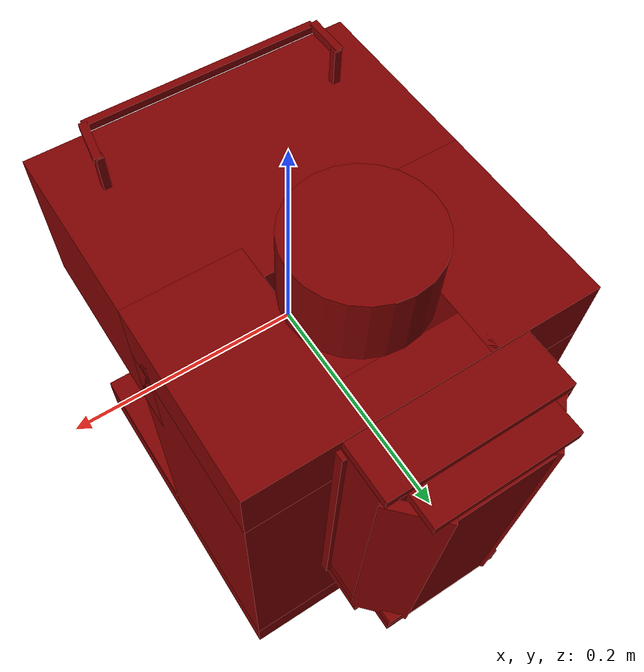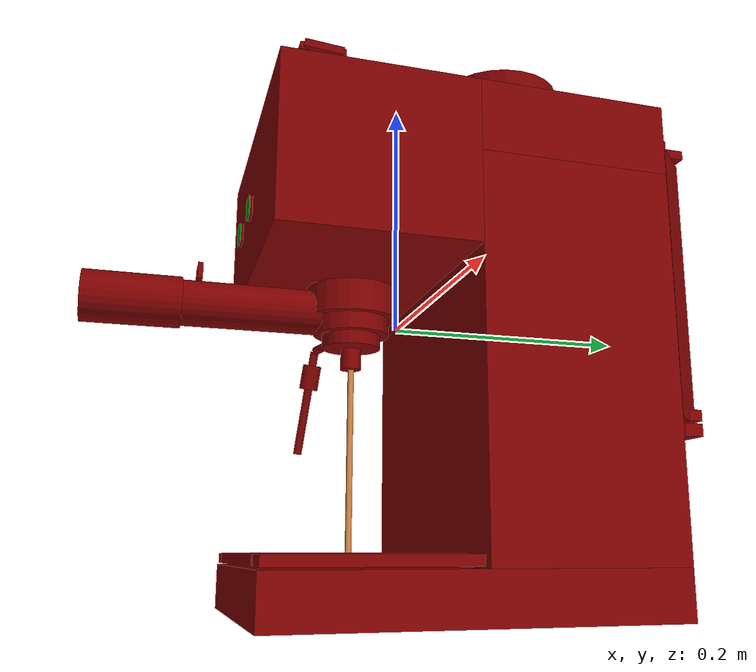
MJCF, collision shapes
<?xml version='1.0' encoding='UTF-8'?>
<mujoco model="model">
  <compiler angle="radian"/>
  <asset>
    <mesh file="visuals/Body001.obj" name="Body001_vis"/>
    <mesh file="visuals/Button001.obj" name="Button001_vis"/>
    <mesh file="visuals/Button002.obj" name="Button002_vis"/>
    <mesh file="visuals/Container001_Clear.obj" name="Container001_Clear_vis"/>
    <mesh file="visuals/Lever001.obj" name="Lever001_vis"/>
    <mesh file="visuals/Lever002.obj" name="Lever002_vis"/>
    <mesh file="visuals/Lid001.obj" name="Lid001_vis"/>
    <mesh file="visuals/Lid002.obj" name="Lid002_vis"/>
    <mesh file="visuals/Lid003.obj" name="Lid003_vis"/>
    <texture file="visuals/T_BC001.png" name="Body001_material" type="2d"/>
    <material name="Body001_material" rgba="1 1 1 1.0" texture="Body001_material" shininess="0.4472135901451111" specular="2"/>
    <texture file="visuals/T_BC001.png" name="Button001_material" type="2d"/>
    <material name="Button001_material" rgba="1 1 1 1.0" texture="Button001_material" shininess="0.4472135901451111" specular="0.3103448502657381"/>
    <texture file="visuals/T_BC001.png" name="Button002_material" type="2d"/>
    <material name="Button002_material" rgba="1 1 1 1.0" texture="Button002_material" shininess="0.4472135901451111" specular="0.3103448502657381"/>
    <texture file="visuals/T_BC001.png" name="Container001_Clear_material" type="2d"/>
    <material name="Container001_Clear_material" rgba="1 1 1 0.13636359572410583" texture="Container001_Clear_material" shininess="0.4472135901451111" specular="0.3103448502657381"/>
    <texture file="visuals/T_BC001.png" name="Lid003_material" type="2d"/>
    <material name="Lid003_material" rgba="1 1 1 1.0" texture="Lid003_material" shininess="0.4472135901451111" specular="0.3103448502657381"/>
    <texture file="visuals/T_BC001.png" name="Lever001_material" type="2d"/>
    <material name="Lever001_material" rgba="1 1 1 1.0" texture="Lever001_material" shininess="0.4472135901451111" specular="0.3103448502657381"/>
    <texture file="visuals/T_BC001.png" name="Lever002_material" type="2d"/>
    <material name="Lever002_material" rgba="1 1 1 1.0" texture="Lever002_material" shininess="0.4472135901451111" specular="0.3103448502657381"/>
    <texture file="visuals/T_BC001.png" name="Lid001_material" type="2d"/>
    <material name="Lid001_material" rgba="1 1 1 1.0" texture="Lid001_material" shininess="0.4472135901451111" specular="0.3103448502657381"/>
    <texture file="visuals/T_BC001.png" name="Lid002_material" type="2d"/>
    <material name="Lid002_material" rgba="1 1 1 1.0" texture="Lid002_material" shininess="0.4472135901451111" specular="0.3103448502657381"/>
  </asset>
  <default>
    <default class="visual">
      <geom conaffinity="0" contype="0" group="1" type="mesh"/>
    </default>
    <default class="collision">
      <geom group="0" rgba="0.5 0 0 0.5"/>
    </default>
    <default class="spawn">
      <geom group="0" rgba="1 1 1 0.5" contype="0" conaffinity="0"/>
      <site group="0" rgba="1 1 1 0.5"/>
    </default>
    <default class="region">
      <geom group="1" conaffinity="0" contype="0" rgba="0 1 0 0"/>
    </default>
  </default>
  <worldbody>
    <body>
      <body name="object">
        <geom class="collision" type="box" pos="-0.022556018084287643 -0.1312839239835739 0.07933254539966583" size="0.007719576824456453 0.0006592688732780516 0.007719576824456453" quat="1.0 0.0 0.0 0.0" name="start_button_1" rgba="0.0 0.5 0 0.5"/>
        <geom class="collision" type="box" pos="0.039583224803209305 -0.1312839239835739 0.07921957969665527" size="0.007719576824456453 0.0006592688732780516 0.007719576824456453" quat="1.0 0.0 0.0 0.0" name="start_button_2" rgba="0.0 0.5 0 0.5"/>
        <site type="cylinder" rgba="0.8 0.5 0.25 1" size="0.002471896121278405 0.08510515093803406" pos="0.007965503260493279 -0.040124084800481796 -0.12177497893571854" name="coffee_liquid"/>
        <site rgba="0 0 0 0" size="0.009999999776482582 0.009999999776482582" pos="0.00811292976140976 -0.0405646413564682 -0.18187128007411957" name="receptacle_place_site"/>
        <geom mesh="Body001_vis" type="mesh" solimp="0.998 0.998 0.001" solref="0.001 1" density="100" friction="0.95 0.3 0.1" class="visual" material="Body001_material"/>
        <geom class="collision" type="box" pos="0.007972228340804577 0.023939594626426697 -0.21091483533382416" size="0.13606508076190948 0.15155373513698578 0.01878664642572403" quat="1.0 0.0 0.0 0.0"/>
        <geom class="collision" type="box" pos="-0.11179772019386292 -0.0533299520611763 -0.18670199811458588" size="0.016294442117214203 0.0730777382850647 0.003998328000307083" quat="1.0 0.0 0.0 0.0"/>
        <geom class="collision" type="box" pos="0.12763404846191406 -0.0533299520611763 -0.18670199811458588" size="0.0162944532930851 0.07307778298854828 0.003998330794274807" quat="1.0 0.0 0.0 0.0"/>
        <geom class="collision" type="box" pos="0.007972228340804577 0.09959402680397034 -0.0447087436914444" size="0.13606508076190948 0.07589931041002274 0.1474127173423767" quat="1.0 0.0 0.0 0.0"/>
        <geom class="collision" type="box" pos="0.007972228340804577 -0.03670744225382805 0.0955081433057785" size="0.13606508076190948 0.08800991624593735 0.06361173093318939" quat="1.0 0.0 0.0 0.0"/>
        <geom class="collision" type="box" pos="0.007911131717264652 0.2001836597919464 -0.08268803358078003" size="0.06947555392980576 0.022279180586338043 0.005434736143797636" quat="1.0 0.0 0.0 0.0"/>
        <geom class="collision" type="box" pos="0.010076425038278103 0.23640437424182892 -0.08268803358078003" size="0.053830429911613464 0.01223550271242857 0.005434736143797636" quat="1.0 0.0 0.0 0.0"/>
        <geom class="collision" type="box" pos="0.007899260148406029 -0.10106587409973145 0.18981927633285522" size="0.0930277407169342 0.0030366566497832537 0.0030366566497832537" quat="1.0 0.0 0.0 0.0"/>
        <geom class="collision" type="box" pos="-0.08749401569366455 -0.08634346723556519 0.18861307203769684" size="0.01507650502026081 0.0030366566497832537 0.0030366566497832537" quat="0.6579318046569824 -0.056131310760974884 0.06383802741765976 0.748264491558075"/>
        <geom class="collision" type="box" pos="-0.08749401569366455 -0.07302220910787582 0.17341583967208862" size="0.0030366526916623116 0.003036652458831668 0.01507647056132555" quat="1.0 0.0 0.0 0.0"/>
        <geom class="collision" type="box" pos="0.10279612243175507 -0.08634346723556519 0.18861307203769684" size="0.01507650502026081 0.0030366566497832537 0.0030366566497832537" quat="0.7533503174781799 -0.04695308580994606 0.07086201012134552 0.6521022319793701"/>
        <geom class="collision" type="box" pos="0.10362353920936584 -0.07302220910787582 0.17341583967208862" size="0.0030366540886461735 0.003036653622984886 0.015076479874551296" quat="1.0 0.0 0.0 0.0"/>
        <geom class="collision" type="box" pos="0.09795491397380829 0.09959401935338974 0.1309119164943695" size="0.04608239233493805 0.07589931041002274 0.028207950294017792" quat="1.0 0.0 0.0 0.0"/>
        <geom class="collision" type="box" pos="-0.08313673734664917 0.09959401935338974 0.1309119164943695" size="0.04495612159371376 0.07589931041002274 0.028207950294017792" quat="1.0 0.0 0.0 0.0"/>
        <geom class="collision" type="box" pos="0.006901388056576252 0.1583334505558014 0.1309119164943695" size="0.0506950207054615 0.017159875482320786 0.028207950294017792" quat="1.0 0.0 0.0 0.0"/>
        <body name="Button001">
          <joint axis="0.0 1.0 0.0" pos="-0.022446535527706146 -0.13093294203281403 0.07912077754735947" limited="true" name="Button001_joint" range="0.0 0.0015" type="slide" damping="1" frictionloss="1" armature=".01" stiffness="0.05"/>
          <geom mesh="Button001_vis" type="mesh" solimp="0.998 0.998 0.001" solref="0.001 1" density="100" friction="0.95 0.3 0.1" class="visual" material="Button001_material"/>
          <geom class="collision" type="box" pos="-0.022556018084287643 -0.12932269275188446 0.07933254539966583" size="0.007719576824456453 0.0006592688732780516 0.007719576824456453" quat="1.0 0.0 0.0 0.0"/>
        </body>
        <body name="Button002">
          <joint axis="0.0 1.0 0.0" pos="0.03956078737974167 -0.13093294203281403 0.07912077754735947" limited="true" name="Button002_joint" range="0.0 0.0015" type="slide" damping="1" frictionloss="1" armature=".01" stiffness="0.05"/>
          <geom mesh="Button002_vis" type="mesh" solimp="0.998 0.998 0.001" solref="0.001 1" density="100" friction="0.95 0.3 0.1" class="visual" material="Button002_material"/>
          <geom class="collision" type="box" pos="0.039583224803209305 -0.12932269275188446 0.07921957969665527" size="0.007719576824456453 0.0006592688732780516 0.007719576824456453" quat="1.0 0.0 0.0 0.0"/>
        </body>
        <body name="Container001_Clear">
          <joint axis="0.0 0.0 1.0" pos="0.00797213800251484 0.21707592904567719 0.025129862129688263" limited="true" name="Container001_Clear_joint" range="0.0 0.1" type="slide" damping="1" frictionloss="1" armature=".01" stiffness="0.05"/>
          <geom mesh="Container001_Clear_vis" type="mesh" solimp="0.998 0.998 0.001" solref="0.001 1" density="100" friction="0.95 0.3 0.1" class="visual" material="Container001_Clear_material"/>
          <geom class="collision" type="box" pos="0.07384487241506577 0.2001836597919464 0.04256868734955788" size="0.003541779238730669 0.022279180586338043 0.11773624271154404" quat="1.0 0.0 0.0 0.0"/>
          <geom class="collision" type="box" pos="0.010076389648020267 0.24613457918167114 0.04161379858851433" size="0.03716644272208214 0.003595772199332714 0.11678135395050049" quat="1.0 0.0 0.0 0.0"/>
          <geom class="collision" type="box" pos="0.007911130785942078 0.2001836597919464 -0.06947944313287735" size="0.06947555392980576 0.022279180586338043 0.005688115488737822" quat="1.0 0.0 0.0 0.0"/>
          <geom class="collision" type="box" pos="0.010076424106955528 0.23640437424182892 -0.0704343393445015" size="0.053830429911613464 0.01223550271242857 0.00473322719335556" quat="1.0 0.0 0.0 0.0"/>
          <geom class="collision" type="box" pos="-0.0585189089179039 0.2001836597919464 0.04256868734955788" size="0.003541779238730669 0.022279180586338043 0.11773624271154404" quat="1.0 0.0 0.0 0.0"/>
          <geom class="collision" type="box" pos="0.06208522990345955 0.23333798348903656 0.04256868734955788" size="0.003541779238730669 0.022279180586338043 0.11773624271154404" quat="0.9279055595397949 0.0 0.0 0.37281534075737"/>
          <geom class="collision" type="box" pos="-0.04214711859822273 0.23333798348903656 0.04256868734955788" size="0.003541779238730669 0.022279180586338043 0.11773624271154404" quat="0.9279055595397949 0.0 -0.0 -0.3728153705596924"/>
          <geom class="collision" type="box" pos="0.010156135074794292 0.18199697136878967 0.04117928445339203" size="0.07094264030456543 0.003595772199332714 0.11678135395050049" quat="1.0 0.0 0.0 0.0"/>
          <body name="Lid003">
            <joint axis="0.0 0.0 1.0" pos="0.007972081191837788 0.2178983986377716 0.1601223349571228" limited="true" name="Lid003_joint" range="0.0 0.05" type="slide" damping="1" frictionloss="1" armature=".01" stiffness="0.05"/>
            <geom mesh="Lid003_vis" type="mesh" solimp="0.998 0.998 0.001" solref="0.001 1" density="100" friction="0.95 0.3 0.1" class="visual" material="Lid003_material"/>
            <geom class="collision" type="box" pos="0.007911136373877525 0.20084577798843384 0.1648629754781723" size="0.06947555392980576 0.021617062389850616 0.003998309373855591" quat="1.0 0.0 0.0 0.0"/>
            <geom class="collision" type="box" pos="0.010076429694890976 0.23640437424182892 0.1648629754781723" size="0.053830429911613464 0.01223550271242857 0.003998309373855591" quat="1.0 0.0 0.0 0.0"/>
          </body>
        </body>
        <body name="Lever001">
          <joint axis="0.0 0.0 1.0" pos="0.007972147315740585 -0.04036591947078705 0.004816548898816109" limited="true" name="Lever001_joint" range="-0.5235987755982988 0.5235987755982988" type="hinge" damping="1" frictionloss="1" armature=".01" stiffness="0.05"/>
          <geom mesh="Lever001_vis" type="mesh" solimp="0.998 0.998 0.001" solref="0.001 1" density="100" friction="0.95 0.3 0.1" class="visual" material="Lever001_material"/>
          <geom class="collision" type="cylinder" pos="0.00813333224505186 -0.21323803067207336 0.0077765220776200294" size="0.020122921094298363 0.03700771555304527" quat="0.7071068286895752 0.7071067690849304 0.0 0.0"/>
          <geom class="collision" type="cylinder" pos="0.00813333224505186 -0.12211866676807404 0.0077765146270394325" size="0.018018677830696106 0.05480995401740074" quat="0.7071068286895752 0.7071067690849304 0.0 0.0"/>
          <geom class="collision" type="cylinder" pos="0.007997777312994003 -0.04040057957172394 -0.029380930587649345" size="0.008313307538628578 0.008313307538628578" quat="1.0 0.0 0.0 0.0"/>
          <geom class="collision" type="cylinder" pos="0.007997776381671429 -0.040340933948755264 0.016485633328557014" size="0.03726630285382271 0.012563414871692657" quat="1.0 0.0 0.0 0.0"/>
          <geom class="collision" type="cylinder" pos="0.00799777451902628 -0.040340933948755264 -0.00227895169518888" size="0.03065260872244835 0.007361642085015774" quat="1.0 0.0 0.0 0.0"/>
          <geom class="collision" type="cylinder" pos="0.007997777312994003 -0.040340933948755264 -0.014595048502087593" size="0.02383929118514061 0.005725330673158169" quat="1.0 0.0 0.0 0.0"/>
          <geom class="collision" type="box" pos="0.007959139533340931 -0.16368088126182556 0.03170967474579811" size="0.013275433331727982 0.001972730038687587 0.006394472438842058" quat="1.0 0.0 0.0 0.0"/>
        </body>
        <body name="Lever002">
          <joint axis="0.0 0.0 1.0" pos="-0.04476284235715866 -0.013405725359916687 0.027409031987190247" limited="true" name="Lever002_joint" range="-0.5235987755982988 0.5235987755982988" type="hinge" damping="1" frictionloss="1" armature=".01" stiffness="0.05"/>
          <geom mesh="Lever002_vis" type="mesh" solimp="0.998 0.998 0.001" solref="0.001 1" density="100" friction="0.95 0.3 0.1" class="visual" material="Lever002_material"/>
          <geom class="collision" type="cylinder" pos="-0.12982988357543945 -0.05151864141225815 -0.043371934443712234" size="0.0038898633792996407 0.04914293438196182" quat="0.9920128583908081 -0.052596431225538254 0.11448700726032257 -0.006070064380764961"/>
          <geom class="collision" type="cylinder" pos="-0.08035501092672348 -0.029051540419459343 0.010298892855644226" size="0.003889863146468997 0.04027672857046127" quat="0.7357292175292969 -0.14064598083496094 0.6426465511322021 0.1610175371170044"/>
          <geom class="collision" type="cylinder" pos="-0.04450255259871483 -0.013831159099936485 0.022630218416452408" size="0.0038898633792996407 0.007651560939848423" quat="1.0 0.0 0.0 0.0"/>
          <geom class="collision" type="cylinder" pos="-0.12425584346055984 -0.04899906367063522 -0.019677970558404922" size="0.008620746433734894 0.011520910076797009" quat="0.9920128583908081 -0.052596431225538254 0.11448700726032257 -0.006070064380764961"/>
        </body>
        <body name="Lid001">
          <joint axis="0.0 0.0 1.0" pos="0.00797216221690178 -0.05953061208128929 -0.18362975120544434" limited="true" name="Lid001_joint" range="0.0 0.05" type="slide" damping="1" frictionloss="1" armature=".01" stiffness="0.05"/>
          <geom mesh="Lid001_vis" type="mesh" solimp="0.998 0.998 0.001" solref="0.001 1" density="100" friction="0.95 0.3 0.1" class="visual" material="Lid001_material"/>
          <geom class="collision" type="box" pos="0.007722922135144472 -0.05387892946600914 -0.18640482425689697" size="0.10106156766414642 0.07362668216228485 0.00429549952968955" quat="1.0 0.0 0.0 0.0"/>
        </body>
        <body name="Lid002">
          <joint axis="0.0 0.0 1.0" pos="0.00825733132660389 0.0947655588388443 0.2012258917093277" limited="true" name="Lid002_joint" range="0.0 0.05" type="slide" damping="1" frictionloss="1" armature=".01" stiffness="0.05"/>
          <geom mesh="Lid002_vis" type="mesh" solimp="0.998 0.998 0.001" solref="0.001 1" density="100" friction="0.95 0.3 0.1" class="visual" material="Lid002_material"/>
          <geom class="collision" type="cylinder" pos="0.00882868841290474 0.09479297697544098 0.1954895555973053" size="0.05190379172563553 0.029139190912246704" quat="1.0 0.0 0.0 0.0"/>
        </body>
        <geom class="region" name="reg_main" type="box" pos="0.0 0.062251195311546326 7.450580596923828e-09" size="0.14403730630874634 0.19053001701831818 0.23317193984985352"/>
      </body>
    </body>
  </worldbody>
  <actuator>
    <motor name="Button001_joint_actuator" joint="Button001_joint" gear="0.5"/>
    <motor name="Button002_joint_actuator" joint="Button002_joint" gear="0.5"/>
    <motor name="Container001_Clear_joint_actuator" joint="Container001_Clear_joint" gear="100"/>
    <motor name="Lever001_joint_actuator" joint="Lever001_joint" gear="10"/>
    <motor name="Lever002_joint_actuator" joint="Lever002_joint" gear="10"/>
    <motor name="Lid001_joint_actuator" joint="Lid001_joint" gear="10"/>
    <motor name="Lid002_joint_actuator" joint="Lid002_joint" gear="10"/>
    <motor name="Lid003_joint_actuator" joint="Lid003_joint" gear="10"/>
  </actuator>
</mujoco>
